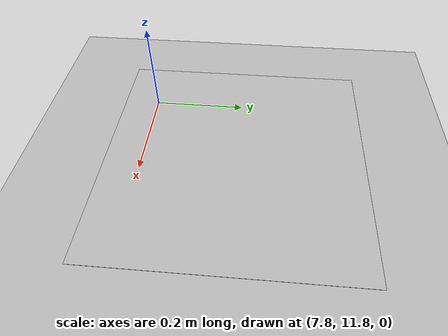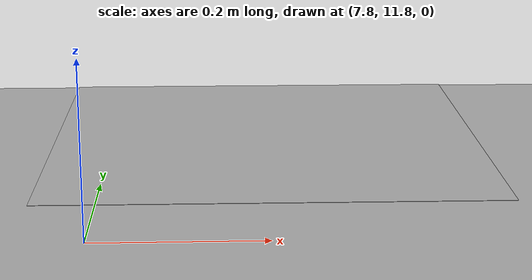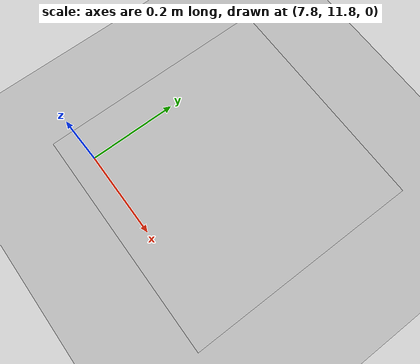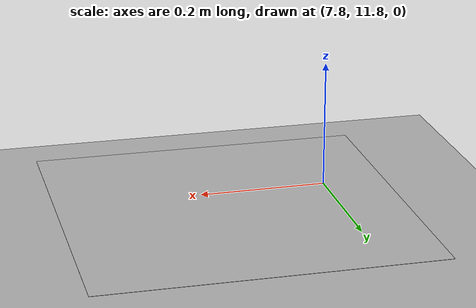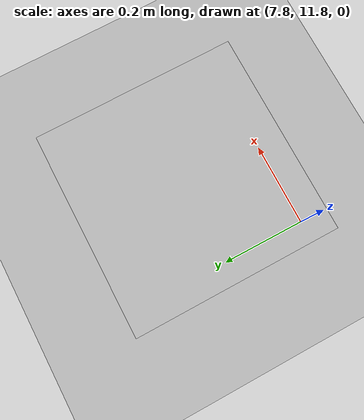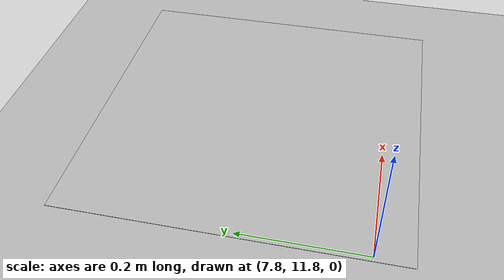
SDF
<?xml version="1.0" ?>
<sdf version="1.5">
  <world name="default">
    <!-- A global light source -->
    <include>
      <uri>model://sun</uri>
    </include>
    <!-- A ground plane -->
    <include>
      <uri>model://ground_plane</uri>
    </include>
    <physics name='default_physics' default='0' type='ode'>
      <gravity>0 0 -9.8066</gravity>
      <ode>
        <solver>
          <type>quick</type>
          <iters>10</iters>
          <sor>1.3</sor>
          <use_dynamic_moi_rescaling>0</use_dynamic_moi_rescaling>
        </solver>
        <constraints>
          <cfm>0</cfm>
          <erp>0.2</erp>
          <contact_max_correcting_vel>100</contact_max_correcting_vel>
          <contact_surface_layer>0.001</contact_surface_layer>
        </constraints>
      </ode>
      <max_step_size>0.001</max_step_size>
      <real_time_factor>1</real_time_factor>
      <real_time_update_rate>1000</real_time_update_rate>
      <magnetic_field>6.0e-6 2.3e-5 -4.2e-5</magnetic_field>
    </physics>
   <model name="ARtag6">
      <static>true</static>
      <pose>8 12 0.06 0 0 0</pose>
      <link name="link">
         <collision name="collision">
            <geometry>
               <plane>
                  <normal>0 0 1</normal>
                  <size>0.5 0.5</size>
               </plane>
            </geometry>
            <surface>
               <friction>
                  <ode>
                     <mu>100</mu>
                     <mu2>50</mu2>
                  </ode>
               </friction>
            </surface>
         </collision>
         <visual name="visual">
            <cast_shadows>false</cast_shadows>
            <geometry>
               <plane>
                  <normal>0 0 1</normal>
                  <size>0.5 0.5</size>
               </plane>
            </geometry>
            <material>
               <script>
                  <uri>model://ARtag6/materials/scripts</uri>
                  <uri>model://ARtag6/materials/textures/</uri>
                  <name>ARtag6/Image</name>
               </script>
            </material>
         </visual>
      </link>
   </model>
    <model name='lawn_plane'>
      <static>1</static>
      <link name='link'>
        <collision name='collision'>
          <geometry>
            <box>
              <size>30 30 0.02</size>
            </box>
          </geometry>
          <max_contacts>10</max_contacts>
          <surface>
            <contact>
              <ode/>
            </contact>
            <bounce/>
            <friction>
              <torsional>
                <ode/>
              </torsional>
              <ode/>
            </friction>
          </surface>
        </collision>
        <visual name='visual'>
          <cast_shadows>0</cast_shadows>
          <geometry>
            <box>
              <size>30 30 0.02</size>
            </box>
          </geometry>
          <material>
            <script>
              <uri>model://lawn_plane/materials/scripts</uri>
              <uri>model://lawn_plane/materials/textures</uri>
              <name>vrc/lawn</name>
            </script>
          </material>
        </visual>
        <self_collide>0</self_collide>
        <enable_wind>0</enable_wind>
        <kinematic>0</kinematic>
      </link>
    </model>
  </world>
</sdf>
